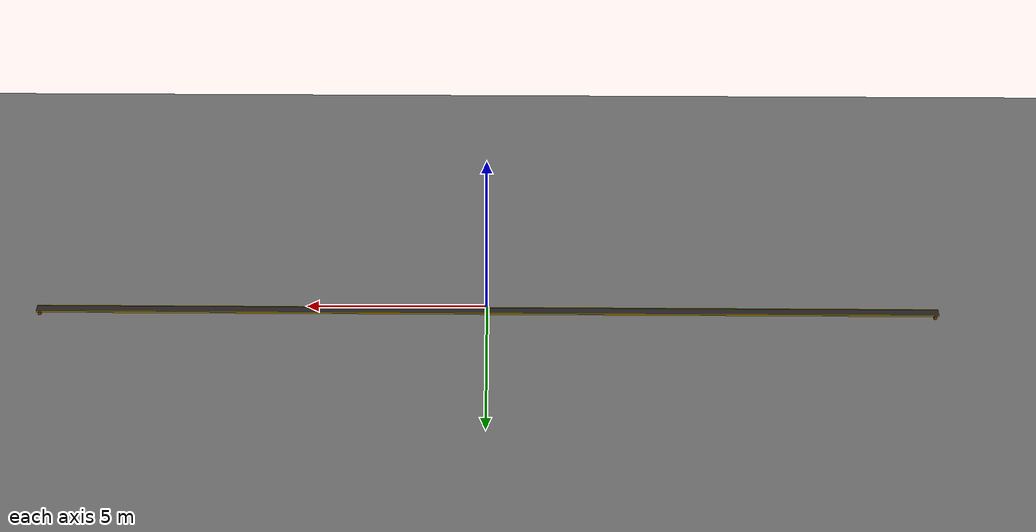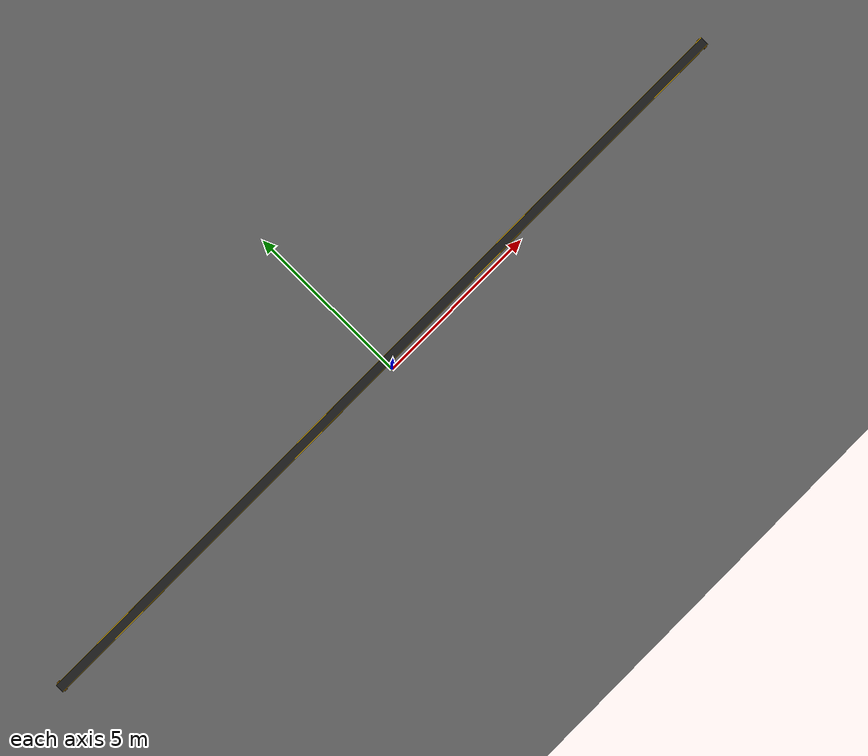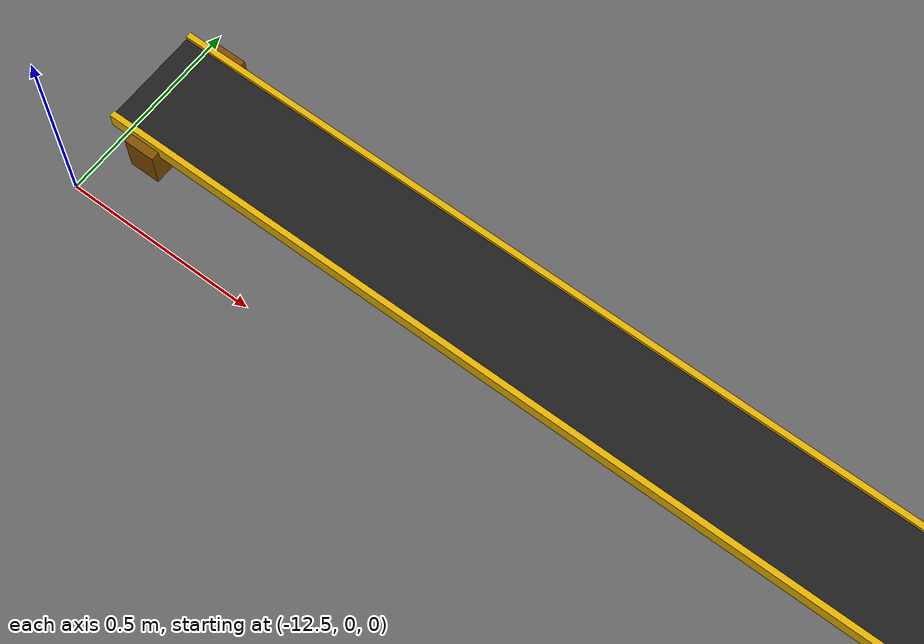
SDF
<?xml version="1.0" ?>
<sdf version="1.8">
  <world name="capstone_world">

    <physics name="1ms" type="ignored">
      <max_step_size>0.001</max_step_size>
      <real_time_factor>1.0</real_time_factor>
    </physics>
    <plugin filename="gz-sim-physics-system"        name="gz::sim::systems::Physics"/>
    <plugin filename="gz-sim-user-commands-system"  name="gz::sim::systems::UserCommands"/>
    <plugin filename="gz-sim-scene-broadcaster-system" name="gz::sim::systems::SceneBroadcaster"/>
    <plugin filename="gz-sim-contact-system"        name="gz::sim::systems::Contact"/>

    <light type="directional" name="sun">
      <cast_shadows>false</cast_shadows>
      <pose>0 0 10 0 0 0</pose>
      <diffuse>1.0 1.0 1.0 1</diffuse>
      <specular>0.2 0.2 0.2 1</specular>
      <direction>-0.3 0.1 -0.9</direction>
    </light>

    <!-- Ground -->
    <model name="ground_plane">
      <static>true</static>
      <link name="link">
        <collision name="collision">
          <geometry><plane><normal>0 0 1</normal></plane></geometry>
        </collision>
        <visual name="visual">
          <geometry><plane><normal>0 0 1</normal><size>20 20</size></plane></geometry>
          <material>
            <ambient>0.35 0.35 0.35 1</ambient>
            <diffuse>0.40 0.40 0.40 1</diffuse>
          </material>
        </visual>
      </link>
    </model>

    <!-- REAL PHYSICS CONVEYOR BELT (Positioned for Mycobot) -->
    <model name="conveyor_belt_model">
      <static>true</static>
      <pose>0 0.28 0.1 0 0 0</pose>
      <link name="belt_link">
        <collision name="col">
          <geometry><box><size>25.0 0.25 0.02</size></box></geometry>
          <surface><friction><ode><mu>1.0</mu><mu2>1.0</mu2></ode></friction></surface>
        </collision>
        <visual name="vis">
          <geometry><box><size>25.0 0.25 0.02</size></box></geometry>
          <material>
            <ambient>0.08 0.08 0.08 1</ambient>
            <diffuse>0.12 0.12 0.12 1</diffuse>
            <emissive>0.02 0.02 0.02 1</emissive>
          </material>
        </visual>
      </link>
      <plugin filename="gz-sim-track-controller-system" name="gz::sim::systems::TrackController">
        <link>belt_link</link>
        <min_velocity>-5.0</min_velocity>
        <max_velocity>5.0</max_velocity>
      </plugin>
    </model>

    <!-- Belt rails moved to match belt -->
    <model name="belt_rail_front">
      <static>true</static>
      <pose>0 0.41 0.1 0 0 0</pose>
      <link name="link">
        <collision name="col"><geometry><box><size>25.0 0.015 0.04</size></box></geometry></collision>
        <visual name="vis">
          <geometry><box><size>25.0 0.015 0.04</size></box></geometry>
          <material><ambient>0.9 0.7 0.0 1</ambient><diffuse>0.9 0.7 0.0 1</diffuse><emissive>0.3 0.2 0.0 1</emissive></material>
        </visual>
      </link>
    </model>

    <model name="belt_rail_back">
      <static>true</static>
      <pose>0 0.15 0.1 0 0 0</pose>
      <link name="link">
        <collision name="col"><geometry><box><size>25.0 0.015 0.04</size></box></geometry></collision>
        <visual name="vis">
          <geometry><box><size>25.0 0.015 0.04</size></box></geometry>
          <material><ambient>0.9 0.7 0.0 1</ambient><diffuse>0.9 0.7 0.0 1</diffuse><emissive>0.3 0.2 0.0 1</emissive></material>
        </visual>
      </link>
    </model>

    <!-- legs adjusted for height 0.1 -->
    <model name="leg_fl"><static>true</static><pose> 12.4 0.40 0.05 0 0 0</pose>
      <link name="link"><collision name="col"><geometry><box><size>0.08 0.08 0.1</size></box></geometry></collision>
        <visual name="vis"><geometry><box><size>0.08 0.08 0.1</size></box></geometry>
          <material><ambient>0.5 0.3 0.0 1</ambient><diffuse>0.5 0.3 0.0 1</diffuse><emissive>0.2 0.1 0.0 1</emissive></material>
        </visual></link></model>

    <model name="leg_fr"><static>true</static><pose>-12.4 0.40 0.05 0 0 0</pose>
      <link name="link"><collision name="col"><geometry><box><size>0.08 0.08 0.1</size></box></geometry></collision>
        <visual name="vis"><geometry><box><size>0.08 0.08 0.1</size></box></geometry>
          <material><ambient>0.5 0.3 0.0 1</ambient><diffuse>0.5 0.3 0.0 1</diffuse><emissive>0.2 0.1 0.0 1</emissive></material>
        </visual></link></model>

    <model name="leg_bl"><static>true</static><pose> 12.4 0.16 0.05 0 0 0</pose>
      <link name="link"><collision name="col"><geometry><box><size>0.08 0.08 0.1</size></box></geometry></collision>
        <visual name="vis"><geometry><box><size>0.08 0.08 0.1</size></box></geometry>
          <material><ambient>0.5 0.3 0.0 1</ambient><diffuse>0.5 0.3 0.0 1</diffuse><emissive>0.2 0.1 0.0 1</emissive></material>
        </visual></link></model>

    <model name="leg_br"><static>true</static><pose>-12.4 0.16 0.05 0 0 0</pose>
      <link name="link"><collision name="col"><geometry><box><size>0.08 0.08 0.1</size></box></geometry></collision>
        <visual name="vis"><geometry><box><size>0.08 0.08 0.1</size></box></geometry>
          <material><ambient>0.5 0.3 0.0 1</ambient><diffuse>0.5 0.3 0.0 1</diffuse><emissive>0.2 0.1 0.0 1</emissive></material>
        </visual></link></model>

  </world>
</sdf>
